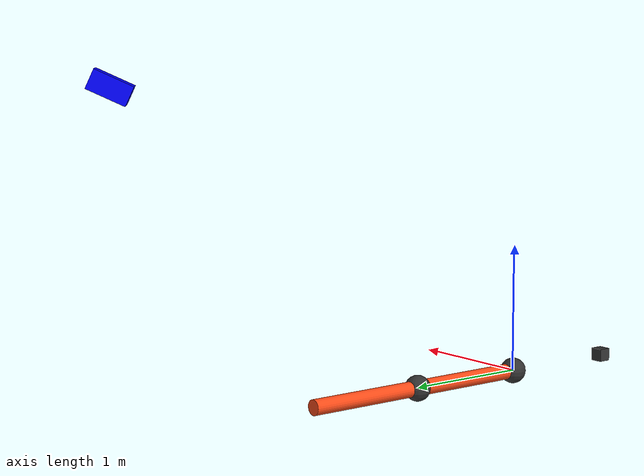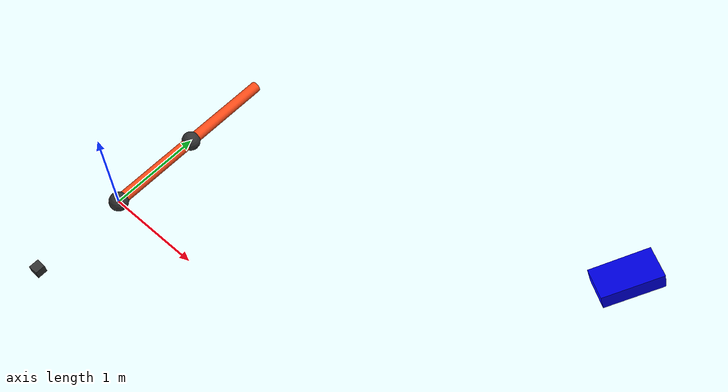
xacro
<?xml version="1.0"?>
<robot xmlns:xacro="http://www.ros.org/wiki/xacro"  name="robot">

    <material name="grey">
        <color rgba="0.2 0.2 0.2 1"/>
    </material>

    <material name="white">
        <color rgba="1 1 1 1"/>
    </material>

    <material name="orange">
        <color rgba="1 0.3 0.1 1"/>
    </material>

    <material name="blue">
        <color rgba="0 0 1 1"/>
    </material>

    <link name="world"></link>

    <joint name="world_to_base" type="fixed">
        <parent link="world" />
        <child link="base" />
        <origin  rpy="3.14 0 1.57" xyz="0 -1 0" />
        <!--origin  rpy="3.14 0 1.57" xyz="0 -1 0" /-->
    </joint>

    <link name="base">
        <visual>
            <origin xyz="0 0 0" rpy="0 0 0"/>
            <geometry>
                <!--box size="5 0.1 3" /-->
                <box size="0.1 0.1 0.1" />
            </geometry>
            <material name="grey" />
        </visual>
    </link>

    <joint name="shoulder_yaw" type="revolute">
        <parent link="base" />
        <child link="shoulder_yaw_link" />
        <origin  rpy="0 0 0" xyz="1 0 0" />
        <axis rpy="0 0 0" xyz="0 0 1" />
        <limit effort="0.1" lower="-3.1" upper="3.1" velocity="0.2"/>
    </joint>

    <link name="shoulder_yaw_link">
        <visual>
            <origin xyz="0 0 0" rpy="0 0 0"/>
            <geometry>
                <box size="0.01 0.01 0.01" />
            </geometry>
            <material name="orange" />
        </visual>
    </link>

    <joint name="shoulder_pitch" type="revolute">
        <parent link="shoulder_yaw_link" />
        <child link="shoulder_pitch_link" />
        <origin  rpy="0 0 0" xyz="0 0 0" />
        <axis rpy="0 0 0" xyz="0 1 0" />
        <limit effort="0.1" lower="-3.1" upper="3.1" velocity="0.2"/>
    </joint>

    <link name="shoulder_pitch_link">
        <visual>
            <origin xyz="0 0 0" rpy="0 0 0"/>
            <geometry>
                <sphere radius=" 0.1" />
            </geometry>
            <material name="grey" />
        </visual>
    </link>

    <joint name="shoulder_roll" type="revolute">
        <parent link="shoulder_pitch_link" />
        <child link="upper_arm" />
        <origin  rpy="0 0 0" xyz="0 0 0" />
        <axis rpy="0 0 0" xyz="1 0 0" />
        <limit effort="0.1" lower="-3.1" upper="3.1" velocity="0.2"/>
    </joint>

    <link name="upper_arm">
        <visual>
            <origin xyz="0.5 0 0" rpy="0 1.57 0"/>
            <geometry>
                <cylinder length="1" radius="0.06" />
            </geometry>
            <material name="orange" />
        </visual>
    </link>

    <joint name="elbow_yaw" type="revolute">
        <parent link="upper_arm" />
        <child link="elbow_yaw_link" />
        <origin  rpy="0 0 0" xyz="1 0 0" />
        <axis rpy="0 0 0" xyz="0 0 1" />
        <limit effort="0.1" lower="-3.1" upper="3.1" velocity="0.2"/>
    </joint>

    <link name="elbow_yaw_link">
        <visual>
            <origin xyz="0 0 0" rpy="0 0 0"/>
            <geometry>
                <box size="0.01 0.01 0.01" />
            </geometry>
            <material name="orange" />
        </visual>
    </link>

    <joint name="elbow_pitch" type="revolute">
        <parent link="elbow_yaw_link" />
        <child link="elbow_pitch_link" />
        <origin  rpy="0 0 0" xyz="0 0 0" />
        <axis rpy="0 0 0" xyz="0 1 0" />
        <limit effort="0.1" lower="-3.1" upper="3.1" velocity="0.2"/>
    </joint>

    <link name="elbow_pitch_link">
        <visual>
            <origin xyz="0 0 0" rpy="0 0 0"/>
            <geometry>
                <sphere radius=" 0.1" />
            </geometry>
            <material name="grey" />
        </visual>
    </link>

    <joint name="elbow_roll" type="revolute">
        <parent link="elbow_pitch_link" />
        <child link="lower_arm" />
        <origin  rpy="0 0 0" xyz="0 0 0" />
        <axis rpy="0 0 0" xyz="1 0 0" />
        <limit effort="0.1" lower="-3.1" upper="3.1" velocity="0.2"/>
    </joint>

    <link name="lower_arm">
        <visual>
            <origin xyz="0.5 0 0" rpy="0 1.57 0"/>
            <geometry>
                <cylinder length="1" radius="0.06" />
            </geometry>
            <material name="orange" />
        </visual>
    </link>

    <joint name="world_to_camera" type="fixed">
        <parent link="world" />
        <child link="camera" />
        <origin  rpy="-2 0 2.5" xyz="4 1 2" />
    </joint>

    <link name="camera">
        <visual>
            <origin xyz="0 0 -0.2"/>
            <geometry>
                <box size="0.2 0.2 0.4" />
            </geometry>
            <material name="blue" />
        </visual>
    </link>

</robot>
